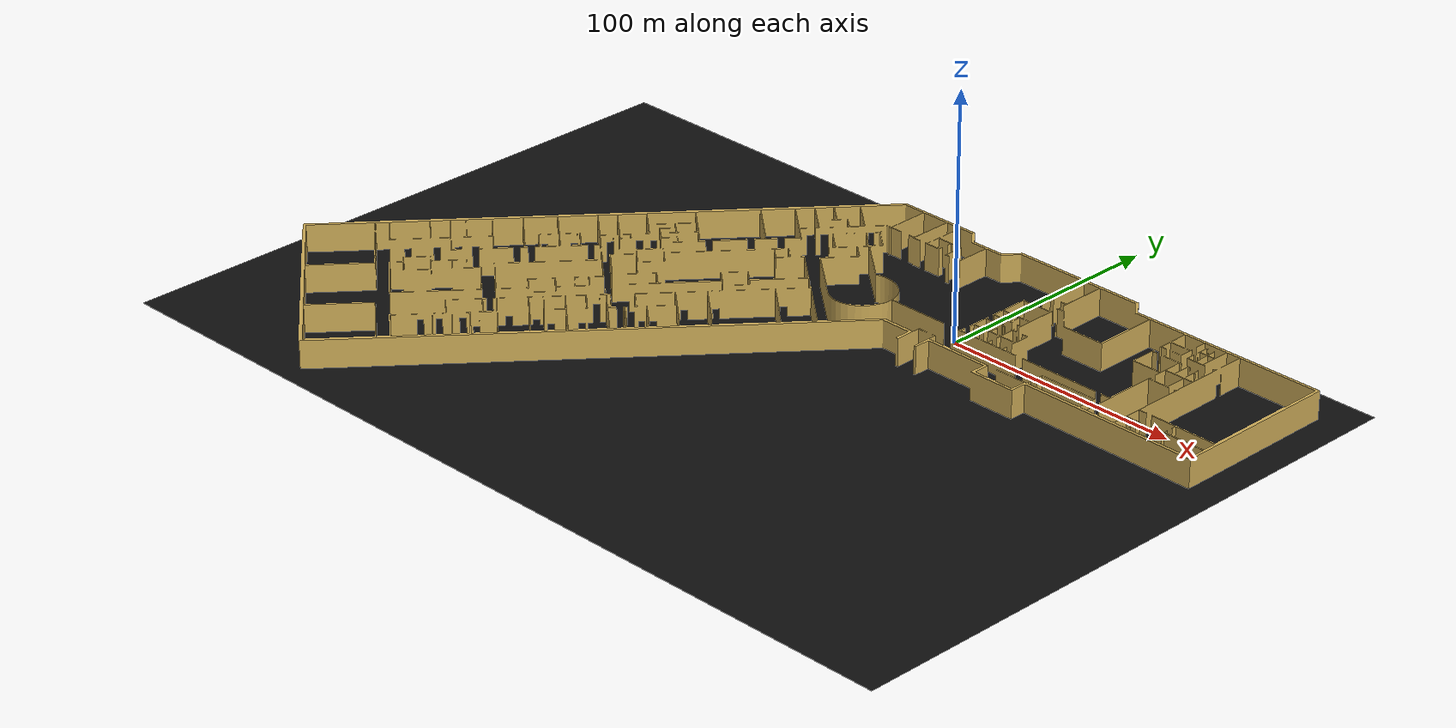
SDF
<?xml version="1.0"?>

<sdf version="1.9">
  <model name="mvp0">
    <pose>0 -4 -5 0 0 0 </pose>
    <link name="link">
      <inertial>
        <mass>1</mass>
        <inertia>
          <ixx>0.2</ixx>
          <ixy>0.0</ixy>
          <ixz>0.0</ixz>
          <iyy>0.2</iyy>
          <iyz>0.0</iyz>
          <izz>0.3</izz>
        </inertia>
      </inertial>
      <collision name="collision">

        <geometry>
          <mesh>
          <scale>4 4 4</scale>
            <uri>install/urdf_dummy/share/urdf_dummy/models/inno_3rd_floor.dae</uri>
          </mesh>
        </geometry>
      </collision>
      <visual name="visual">

        <geometry>
          <mesh>
            <scale>4 4 4</scale>
            <uri>install/urdf_dummy/share/urdf_dummy/models/inno_3rd_floor.dae</uri>
          </mesh>
        </geometry>
      </visual>
    </link>
    <static>1</static>
  </model>
</sdf>
